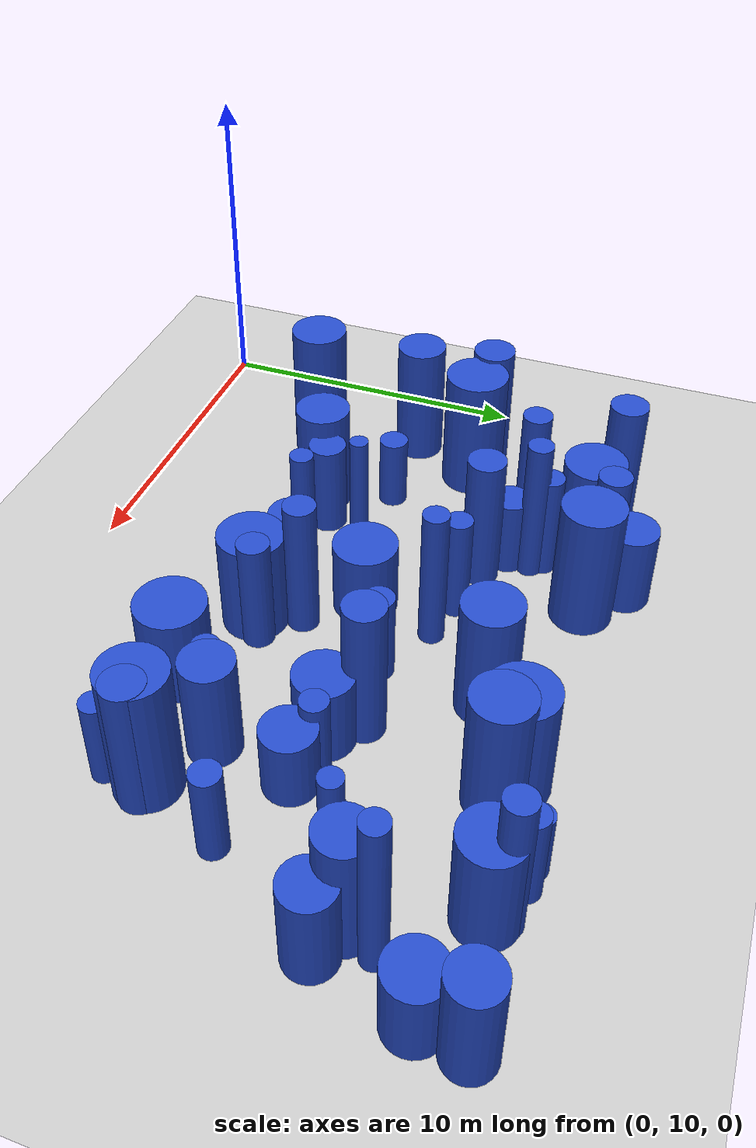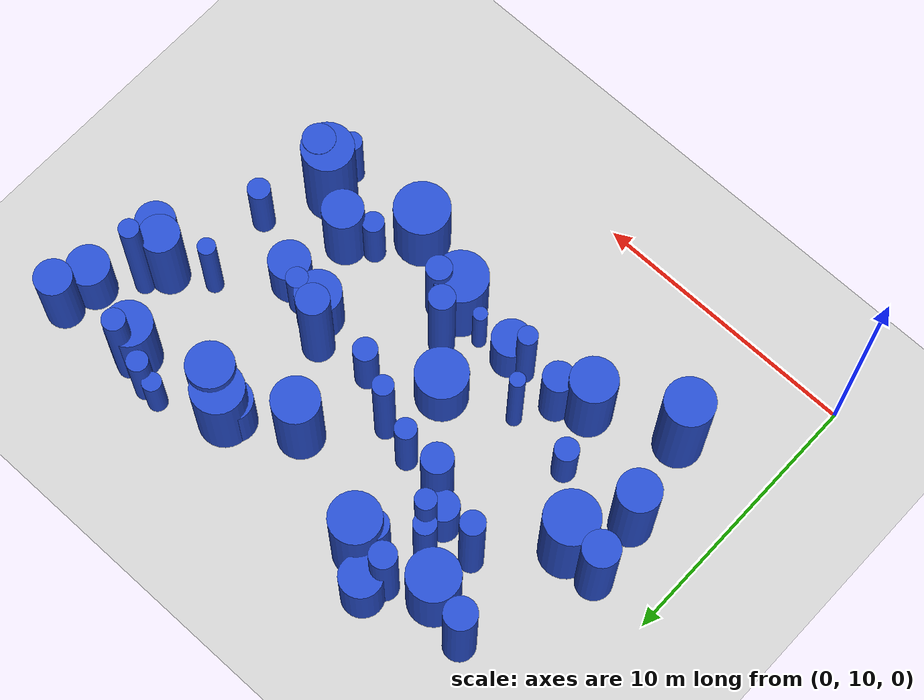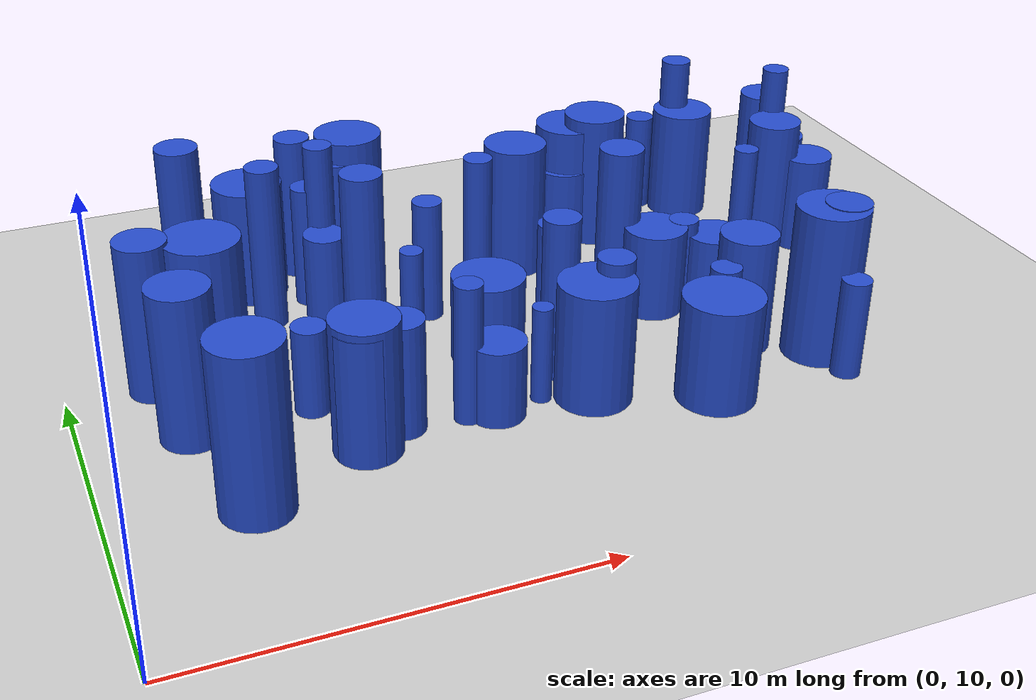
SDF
<sdf version="1.6">
 <world name="default">
  <model name="ground_plane">
   <static>1</static>
   <link name="link">
    <collision name="collision">
     <geometry><plane><normal>0 0 1</normal><size>100 100</size></plane></geometry>
     <surface><friction><ode><mu>100</mu><mu2>50</mu2></ode></friction></surface>
    </collision>
    <visual name="visual">
     <cast_shadows>0</cast_shadows>
     <geometry><plane><normal>0 0 1</normal><size>100 100</size></plane></geometry>
     <material>
      <script><uri>file://media/materials/scripts/gazebo.material</uri><name>Gazebo/Grey</name></script>
     </material>
    </visual>
   </link>
  </model>
  <model name="11">
   <static>0</static>
   <link name="link">
    <inertial>
     <mass>2</mass>
     <inertia><ixx>1.92531</ixx><ixy>0</ixy><ixz>0</ixz><iyy>1.92531</iyy><iyz>0</iyz><izz>0.103853</izz></inertia>
    </inertial>
    <collision name="collision">
     <geometry><cylinder><length>3.35266</length><radius>0.322263</radius></cylinder></geometry>
     <surface><contact><collide_without_contact>1</collide_without_contact></contact></surface>
    </collision>
    <visual name="visual">
     <geometry><cylinder><length>3.35266</length><radius>0.322263</radius></cylinder></geometry>
     <material>
      <script><uri>file://media/materials/scripts/gazebo.material</uri><name>Gazebo/Blue</name></script>
     </material>
    </visual>
    <gravity>0</gravity>
   </link>
   <pose>18.8928 20.868 1.67633 0 -0 0</pose>
  </model>
  <model name="18">
   <static>0</static>
   <link name="link">
    <inertial>
     <mass>2</mass>
     <inertia><ixx>2.75852</ixx><ixy>0</ixy><ixz>0</ixz><iyy>2.75852</iyy><iyz>0</iyz><izz>0.232447</izz></inertia>
    </inertial>
    <collision name="collision">
     <geometry><cylinder><length>3.98168</length><radius>0.482127</radius></cylinder></geometry>
     <surface><contact><collide_without_contact>1</collide_without_contact></contact></surface>
    </collision>
    <visual name="visual">
     <geometry><cylinder><length>3.98168</length><radius>0.482127</radius></cylinder></geometry>
     <material>
      <script><uri>file://media/materials/scripts/gazebo.material</uri><name>Gazebo/Blue</name></script>
     </material>
    </visual>
    <gravity>0</gravity>
   </link>
   <pose>7.12648 24.7804 1.99084 0 -0 0</pose>
  </model>
  <model name="19">
   <static>0</static>
   <link name="link">
    <inertial>
     <mass>2</mass>
     <inertia><ixx>2.15702</ixx><ixy>0</ixy><ixz>0</ixz><iyy>2.15702</iyy><iyz>0</iyz><izz>0.863134</izz></inertia>
    </inertial>
    <collision name="collision">
     <geometry><cylinder><length>3.21756</length><radius>0.92905</radius></cylinder></geometry>
     <surface><contact><collide_without_contact>1</collide_without_contact></contact></surface>
    </collision>
    <visual name="visual">
     <geometry><cylinder><length>3.21756</length><radius>0.92905</radius></cylinder></geometry>
     <material>
      <script><uri>file://media/materials/scripts/gazebo.material</uri><name>Gazebo/Blue</name></script>
     </material>
    </visual>
    <gravity>0</gravity>
   </link>
   <pose>5.64396 24.0193 1.60878 0 -0 0</pose>
  </model>
  <model name="27">
   <static>0</static>
   <link name="link">
    <inertial>
     <mass>2</mass>
     <inertia>
      <ixx>0.751136</ixx>
      <ixy>0</ixy>
      <ixz>0</ixz>
      <iyy>0.751136</iyy>
      <iyz>0</iyz>
      <izz>0.125842</izz>
     </inertia>
    </inertial>
    <collision name="collision">
     <geometry><cylinder><length>2.03207</length><radius>0.354742</radius></cylinder></geometry>
     <surface><contact><collide_without_contact>1</collide_without_contact></contact></surface>
    </collision>
    <visual name="visual">
     <geometry><cylinder><length>2.03207</length><radius>0.354742</radius></cylinder></geometry>
     <material>
      <script><uri>file://media/materials/scripts/gazebo.material</uri><name>Gazebo/Blue</name></script>
     </material>
    </visual>
    <gravity>0</gravity>
   </link>
   <pose>17.2823 25.2801 1.01603 0 -0 0</pose>
  </model>
  <model name="29">
   <static>0</static>
   <link name="link">
    <inertial>
     <mass>2</mass>
     <inertia><ixx>1.20712</ixx><ixy>0</ixy><ixz>0</ixz><iyy>1.20712</iyy><iyz>0</iyz><izz>0.139764</izz></inertia>
    </inertial>
    <collision name="collision">
     <geometry><cylinder><length>2.61217</length><radius>0.37385</radius></cylinder></geometry>
     <surface><contact><collide_without_contact>1</collide_without_contact></contact></surface>
    </collision>
    <visual name="visual">
     <geometry><cylinder><length>2.61217</length><radius>0.37385</radius></cylinder></geometry>
     <material>
      <script><uri>file://media/materials/scripts/gazebo.material</uri><name>Gazebo/Blue</name></script>
     </material>
    </visual>
    <gravity>0</gravity>
   </link>
   <pose>18.2533 14.5095 1.30608 0 -0 0</pose>
  </model>
  <model name="44">
   <static>0</static>
   <link name="link">
    <inertial>
     <mass>2</mass>
     <inertia>
      <ixx>0.976726</ixx>
      <ixy>0</ixy>
      <ixz>0</ixz>
      <iyy>0.976726</iyy>
      <iyz>0</iyz>
      <izz>0.189761</izz>
     </inertia>
    </inertial>
    <collision name="collision">
     <geometry><cylinder><length>2.30023</length><radius>0.435615</radius></cylinder></geometry>
     <surface><contact><collide_without_contact>1</collide_without_contact></contact></surface>
    </collision>
    <visual name="visual">
     <geometry><cylinder><length>2.30023</length><radius>0.435615</radius></cylinder></geometry>
     <material>
      <script><uri>file://media/materials/scripts/gazebo.material</uri><name>Gazebo/Blue</name></script>
     </material>
    </visual>
    <gravity>0</gravity>
   </link>
   <pose>5.48669 17.7345 1.15012 0 -0 0</pose>
  </model>
  <model name="63">
   <static>0</static>
   <link name="link">
    <inertial>
     <mass>2</mass>
     <inertia><ixx>3.37464</ixx><ixy>0</ixy><ixz>0</ixz><iyy>3.37464</iyy><iyz>0</iyz><izz>0.189522</izz></inertia>
    </inertial>
    <collision name="collision">
     <geometry><cylinder><length>4.43613</length><radius>0.435342</radius></cylinder></geometry>
     <surface><contact><collide_without_contact>1</collide_without_contact></contact></surface>
    </collision>
    <visual name="visual">
     <geometry><cylinder><length>4.43613</length><radius>0.435342</radius></cylinder></geometry>
     <material>
      <script><uri>file://media/materials/scripts/gazebo.material</uri><name>Gazebo/Blue</name></script>
     </material>
    </visual>
    <gravity>0</gravity>
   </link>
   <pose>5.65746 22.1794 2.21807 0 -0 0</pose>
  </model>
  <model name="65">
   <static>0</static>
   <link name="link">
    <inertial>
     <mass>2</mass>
     <inertia><ixx>0.9257</ixx><ixy>0</ixy><ixz>0</ixz><iyy>0.9257</iyy><iyz>0</iyz><izz>0.495184</izz></inertia>
    </inertial>
    <collision name="collision">
     <geometry><cylinder><length>2.01709</length><radius>0.703693</radius></cylinder></geometry>
     <surface><contact><collide_without_contact>1</collide_without_contact></contact></surface>
    </collision>
    <visual name="visual">
     <geometry><cylinder><length>2.01709</length><radius>0.703693</radius></cylinder></geometry>
     <material>
      <script><uri>file://media/materials/scripts/gazebo.material</uri><name>Gazebo/Blue</name></script>
     </material>
    </visual>
    <gravity>0</gravity>
   </link>
   <pose>9.50819 15.9698 1.00854 0 -0 0</pose>
  </model>
  <model name="70">
   <static>0</static>
   <link name="link">
    <inertial>
     <mass>2</mass>
     <inertia><ixx>2.38876</ixx><ixy>0</ixy><ixz>0</ixz><iyy>2.38876</iyy><iyz>0</iyz><izz>0.883901</izz></inertia>
    </inertial>
    <collision name="collision">
     <geometry><cylinder><length>3.41773</length><radius>0.94016</radius></cylinder></geometry>
     <surface><contact><collide_without_contact>1</collide_without_contact></contact></surface>
    </collision>
    <visual name="visual">
     <geometry><cylinder><length>3.41773</length><radius>0.94016</radius></cylinder></geometry>
     <material>
      <script><uri>file://media/materials/scripts/gazebo.material</uri><name>Gazebo/Blue</name></script>
     </material>
    </visual>
    <gravity>0</gravity>
   </link>
   <pose>15.0925 24.2243 1.70886 0 -0 0</pose>
  </model>
  <model name="80">
   <static>0</static>
   <link name="link">
    <inertial>
     <mass>2</mass>
     <inertia><ixx>3.19742</ixx><ixy>0</ixy><ixz>0</ixz><iyy>3.19742</iyy><iyz>0</iyz><izz>0.854459</izz></inertia>
    </inertial>
    <collision name="collision">
     <geometry><cylinder><length>4.0769</length><radius>0.924369</radius></cylinder></geometry>
     <surface><contact><collide_without_contact>1</collide_without_contact></contact></surface>
    </collision>
    <visual name="visual">
     <geometry><cylinder><length>4.0769</length><radius>0.924369</radius></cylinder></geometry>
     <material>
      <script><uri>file://media/materials/scripts/gazebo.material</uri><name>Gazebo/Blue</name></script>
     </material>
    </visual>
    <gravity>0</gravity>
   </link>
   <pose>18.194 15.6923 2.03845 0 -0 0</pose>
  </model>
  <model name="100">
   <static>0</static>
   <link name="link">
    <inertial>
     <mass>2</mass>
     <inertia><ixx>1.38166</ixx><ixy>0</ixy><ixz>0</ixz><iyy>1.38166</iyy><iyz>0</iyz><izz>0.57139</izz></inertia>
    </inertial>
    <collision name="collision">
     <geometry><cylinder><length>2.56433</length><radius>0.755903</radius></cylinder></geometry>
     <surface><contact><collide_without_contact>1</collide_without_contact></contact></surface>
    </collision>
    <visual name="visual">
     <geometry><cylinder><length>2.56433</length><radius>0.755903</radius></cylinder></geometry>
     <material>
      <script><uri>file://media/materials/scripts/gazebo.material</uri><name>Gazebo/Blue</name></script>
     </material>
    </visual>
    <gravity>0</gravity>
   </link>
   <pose>7.4595 25.5098 1.28216 0 -0 0</pose>
  </model>
  <model name="113">
   <static>0</static>
   <link name="link">
    <inertial>
     <mass>2</mass>
     <inertia><ixx>1.38505</ixx><ixy>0</ixy><ixz>0</ixz><iyy>1.38505</iyy><iyz>0</iyz><izz>0.151574</izz></inertia>
    </inertial>
    <collision name="collision">
     <geometry><cylinder><length>2.80278</length><radius>0.389325</radius></cylinder></geometry>
     <surface><contact><collide_without_contact>1</collide_without_contact></contact></surface>
    </collision>
    <visual name="visual">
     <geometry><cylinder><length>2.80278</length><radius>0.389325</radius></cylinder></geometry>
     <material>
      <script><uri>file://media/materials/scripts/gazebo.material</uri><name>Gazebo/Blue</name></script>
     </material>
    </visual>
    <gravity>0</gravity>
   </link>
   <pose>17.8881 25.224 1.40139 0 -0 0</pose>
  </model>
  <model name="125">
   <static>0</static>
   <link name="link">
    <inertial>
     <mass>2</mass>
     <inertia><ixx>2.3621</ixx><ixy>0</ixy><ixz>0</ixz><iyy>2.3621</iyy><iyz>0</iyz><izz>0.687938</izz></inertia>
    </inertial>
    <collision name="collision">
     <geometry><cylinder><length>3.47977</length><radius>0.829421</radius></cylinder></geometry>
     <surface><contact><collide_without_contact>1</collide_without_contact></contact></surface>
    </collision>
    <visual name="visual">
     <geometry><cylinder><length>3.47977</length><radius>0.829421</radius></cylinder></geometry>
     <material>
      <script><uri>file://media/materials/scripts/gazebo.material</uri><name>Gazebo/Blue</name></script>
     </material>
    </visual>
    <gravity>0</gravity>
   </link>
   <pose>6.20639 15.6713 1.73988 0 -0 0</pose>
  </model>
  <model name="126">
   <static>0</static>
   <link name="link">
    <inertial>
     <mass>2</mass>
     <inertia><ixx>3.43668</ixx><ixy>0</ixy><ixz>0</ixz><iyy>3.43668</iyy><iyz>0</iyz><izz>0.169152</izz></inertia>
    </inertial>
    <collision name="collision">
     <geometry><cylinder><length>4.48471</length><radius>0.411281</radius></cylinder></geometry>
     <surface><contact><collide_without_contact>1</collide_without_contact></contact></surface>
    </collision>
    <visual name="visual">
     <geometry><cylinder><length>4.48471</length><radius>0.411281</radius></cylinder></geometry>
     <material>
      <script><uri>file://media/materials/scripts/gazebo.material</uri><name>Gazebo/Blue</name></script>
     </material>
    </visual>
    <gravity>0</gravity>
   </link>
   <pose>18.8852 25.0351 2.24236 0 -0 0</pose>
  </model>
  <model name="139">
   <static>0</static>
   <link name="link">
    <inertial>
     <mass>2</mass>
     <inertia><ixx>1.75257</ixx><ixy>0</ixy><ixz>0</ixz><iyy>1.75257</iyy><iyz>0</iyz><izz>0.456247</izz></inertia>
    </inertial>
    <collision name="collision">
     <geometry><cylinder><length>3.02435</length><radius>0.675461</radius></cylinder></geometry>
     <surface><contact><collide_without_contact>1</collide_without_contact></contact></surface>
    </collision>
    <visual name="visual">
     <geometry><cylinder><length>3.02435</length><radius>0.675461</radius></cylinder></geometry>
     <material>
      <script><uri>file://media/materials/scripts/gazebo.material</uri><name>Gazebo/Blue</name></script>
     </material>
    </visual>
    <gravity>0</gravity>
   </link>
   <pose>22.0035 25.0688 1.51217 0 -0 0</pose>
  </model>
  <model name="144">
   <static>0</static>
   <link name="link">
    <inertial>
     <mass>2</mass>
     <inertia><ixx>2.25768</ixx><ixy>0</ixy><ixz>0</ixz><iyy>2.25768</iyy><iyz>0</iyz><izz>0.123162</izz></inertia>
    </inertial>
    <collision name="collision">
     <geometry><cylinder><length>3.62996</length><radius>0.350945</radius></cylinder></geometry>
     <surface><contact><collide_without_contact>1</collide_without_contact></contact></surface>
    </collision>
    <visual name="visual">
     <geometry><cylinder><length>3.62996</length><radius>0.350945</radius></cylinder></geometry>
     <material>
      <script><uri>file://media/materials/scripts/gazebo.material</uri><name>Gazebo/Blue</name></script>
     </material>
    </visual>
    <gravity>0</gravity>
   </link>
   <pose>8.7995 16.037 1.81498 0 -0 0</pose>
  </model>
  <model name="158">
   <static>0</static>
   <link name="link">
    <inertial>
     <mass>2</mass>
     <inertia><ixx>1.28929</ixx><ixy>0</ixy><ixz>0</ixz><iyy>1.28929</iyy><iyz>0</iyz><izz>0.694785</izz></inertia>
    </inertial>
    <collision name="collision">
     <geometry><cylinder><length>2.37727</length><radius>0.833537</radius></cylinder></geometry>
     <surface><contact><collide_without_contact>1</collide_without_contact></contact></surface>
    </collision>
    <visual name="visual">
     <geometry><cylinder><length>2.37727</length><radius>0.833537</radius></cylinder></geometry>
     <material>
      <script><uri>file://media/materials/scripts/gazebo.material</uri><name>Gazebo/Blue</name></script>
     </material>
    </visual>
    <gravity>0</gravity>
   </link>
   <pose>15.3296 19.2733 1.18863 0 -0 0</pose>
  </model>
  <model name="164">
   <static>0</static>
   <link name="link">
    <inertial>
     <mass>2</mass>
     <inertia><ixx>1.11747</ixx><ixy>0</ixy><ixz>0</ixz><iyy>1.11747</iyy><iyz>0</iyz><izz>0.607863</izz></inertia>
    </inertial>
    <collision name="collision">
     <geometry><cylinder><length>2.20935</length><radius>0.779656</radius></cylinder></geometry>
     <surface><contact><collide_without_contact>1</collide_without_contact></contact></surface>
    </collision>
    <visual name="visual">
     <geometry><cylinder><length>2.20935</length><radius>0.779656</radius></cylinder></geometry>
     <material>
      <script><uri>file://media/materials/scripts/gazebo.material</uri><name>Gazebo/Blue</name></script>
     </material>
    </visual>
    <gravity>0</gravity>
   </link>
   <pose>14.8555 23.9788 1.10467 0 -0 0</pose>
  </model>
  <model name="165">
   <static>0</static>
   <link name="link">
    <inertial>
     <mass>2</mass>
     <inertia><ixx>1.34519</ixx><ixy>0</ixy><ixz>0</ixz><iyy>1.34519</iyy><iyz>0</iyz><izz>0.16718</izz></inertia>
    </inertial>
    <collision name="collision">
     <geometry><cylinder><length>2.75129</length><radius>0.408876</radius></cylinder></geometry>
     <surface><contact><collide_without_contact>1</collide_without_contact></contact></surface>
    </collision>
    <visual name="visual">
     <geometry><cylinder><length>2.75129</length><radius>0.408876</radius></cylinder></geometry>
     <material>
      <script><uri>file://media/materials/scripts/gazebo.material</uri><name>Gazebo/Blue</name></script>
     </material>
    </visual>
    <gravity>0</gravity>
   </link>
   <pose>19.3045 17.9938 1.37564 0 -0 0</pose>
  </model>
  <model name="170">
   <static>0</static>
   <link name="link">
    <inertial>
     <mass>2</mass>
     <inertia><ixx>3.33499</ixx><ixy>0</ixy><ixz>0</ixz><iyy>3.33499</iyy><iyz>0</iyz><izz>0.13907</izz></inertia>
    </inertial>
    <collision name="collision">
     <geometry><cylinder><length>4.42637</length><radius>0.372922</radius></cylinder></geometry>
     <surface><contact><collide_without_contact>1</collide_without_contact></contact></surface>
    </collision>
    <visual name="visual">
     <geometry><cylinder><length>4.42637</length><radius>0.372922</radius></cylinder></geometry>
     <material>
      <script><uri>file://media/materials/scripts/gazebo.material</uri><name>Gazebo/Blue</name></script>
     </material>
    </visual>
    <gravity>0</gravity>
   </link>
   <pose>10.901 20.7328 2.21318 0 -0 0</pose>
  </model>
  <model name="172">
   <static>0</static>
   <link name="link">
    <inertial>
     <mass>2</mass>
     <inertia><ixx>3.58316</ixx><ixy>0</ixy><ixz>0</ixz><iyy>3.58316</iyy><iyz>0</iyz><izz>0.140377</izz></inertia>
    </inertial>
    <collision name="collision">
     <geometry><cylinder><length>4.59106</length><radius>0.37467</radius></cylinder></geometry>
     <surface><contact><collide_without_contact>1</collide_without_contact></contact></surface>
    </collision>
    <visual name="visual">
     <geometry><cylinder><length>4.59106</length><radius>0.37467</radius></cylinder></geometry>
     <material>
      <script><uri>file://media/materials/scripts/gazebo.material</uri><name>Gazebo/Blue</name></script>
     </material>
    </visual>
    <gravity>0</gravity>
   </link>
   <pose>7.24927 22.6448 2.29553 0 -0 0</pose>
  </model>
  <model name="173">
   <static>0</static>
   <link name="link">
    <inertial>
     <mass>2</mass>
     <inertia><ixx>1.9962</ixx><ixy>0</ixy><ixz>0</ixz><iyy>1.9962</iyy><iyz>0</iyz><izz>0.718032</izz></inertia>
    </inertial>
    <collision name="collision">
     <geometry><cylinder><length>3.13418</length><radius>0.847368</radius></cylinder></geometry>
     <surface><contact><collide_without_contact>1</collide_without_contact></contact></surface>
    </collision>
    <visual name="visual">
     <geometry><cylinder><length>3.13418</length><radius>0.847368</radius></cylinder></geometry>
     <material>
      <script><uri>file://media/materials/scripts/gazebo.material</uri><name>Gazebo/Blue</name></script>
     </material>
    </visual>
    <gravity>0</gravity>
   </link>
   <pose>18.9255 24.5537 1.56709 0 -0 0</pose>
  </model>
  <model name="176">
   <static>0</static>
   <link name="link">
    <inertial>
     <mass>2</mass>
     <inertia><ixx>2.99267</ixx><ixy>0</ixy><ixz>0</ixz><iyy>2.99267</iyy><iyz>0</iyz><izz>0.422823</izz></inertia>
    </inertial>
    <collision name="collision">
     <geometry><cylinder><length>4.08504</length><radius>0.650248</radius></cylinder></geometry>
     <surface><contact><collide_without_contact>1</collide_without_contact></contact></surface>
    </collision>
    <visual name="visual">
     <geometry><cylinder><length>4.08504</length><radius>0.650248</radius></cylinder></geometry>
     <material>
      <script><uri>file://media/materials/scripts/gazebo.material</uri><name>Gazebo/Blue</name></script>
     </material>
    </visual>
    <gravity>0</gravity>
   </link>
   <pose>2.16702 19.9621 2.04252 0 -0 0</pose>
  </model>
  <model name="180">
   <static>0</static>
   <link name="link">
    <inertial>
     <mass>2</mass>
     <inertia><ixx>3.17189</ixx><ixy>0</ixy><ixz>0</ixz><iyy>3.17189</iyy><iyz>0</iyz><izz>0.306945</izz></inertia>
    </inertial>
    <collision name="collision">
     <geometry><cylinder><length>4.25564</length><radius>0.554026</radius></cylinder></geometry>
     <surface><contact><collide_without_contact>1</collide_without_contact></contact></surface>
    </collision>
    <visual name="visual">
     <geometry><cylinder><length>4.25564</length><radius>0.554026</radius></cylinder></geometry>
     <material>
      <script><uri>file://media/materials/scripts/gazebo.material</uri><name>Gazebo/Blue</name></script>
     </material>
    </visual>
    <gravity>0</gravity>
   </link>
   <pose>7.97734 21.3154 2.12782 0 -0 0</pose>
  </model>
  <model name="195">
   <static>0</static>
   <link name="link">
    <inertial>
     <mass>2</mass>
     <inertia><ixx>1.13306</ixx><ixy>0</ixy><ixz>0</ixz><iyy>1.13306</iyy><iyz>0</iyz><izz>0.313996</izz></inertia>
    </inertial>
    <collision name="collision">
     <geometry><cylinder><length>2.41999</length><radius>0.560353</radius></cylinder></geometry>
     <surface><contact><collide_without_contact>1</collide_without_contact></contact></surface>
    </collision>
    <visual name="visual">
     <geometry><cylinder><length>2.41999</length><radius>0.560353</radius></cylinder></geometry>
     <material>
      <script><uri>file://media/materials/scripts/gazebo.material</uri><name>Gazebo/Blue</name></script>
     </material>
    </visual>
    <gravity>0</gravity>
   </link>
   <pose>7.13258 21.9326 1.20999 0 -0 0</pose>
  </model>
  <model name="204">
   <static>0</static>
   <link name="link">
    <inertial>
     <mass>2</mass>
     <inertia>
      <ixx>2.59021</ixx>
      <ixy>0</ixy>
      <ixz>0</ixz>
      <iyy>2.59021</iyy>
      <iyz>0</iyz>
      <izz>0.0764051</izz>
     </inertia>
    </inertial>
    <collision name="collision">
     <geometry><cylinder><length>3.91306</length><radius>0.276415</radius></cylinder></geometry>
     <surface><contact><collide_without_contact>1</collide_without_contact></contact></surface>
    </collision>
    <visual name="visual">
     <geometry><cylinder><length>3.91306</length><radius>0.276415</radius></cylinder></geometry>
     <material>
      <script><uri>file://media/materials/scripts/gazebo.material</uri><name>Gazebo/Blue</name></script>
     </material>
    </visual>
    <gravity>0</gravity>
   </link>
   <pose>7.95634 17.4906 1.95653 0 -0 0</pose>
  </model>
  <model name="213">
   <static>0</static>
   <link name="link">
    <inertial>
     <mass>2</mass>
     <inertia><ixx>1.3254</ixx><ixy>0</ixy><ixz>0</ixz><iyy>1.3254</iyy><iyz>0</iyz><izz>0.192068</izz></inertia>
    </inertial>
    <collision name="collision">
     <geometry><cylinder><length>2.71592</length><radius>0.438255</radius></cylinder></geometry>
     <surface><contact><collide_without_contact>1</collide_without_contact></contact></surface>
    </collision>
    <visual name="visual">
     <geometry><cylinder><length>2.71592</length><radius>0.438255</radius></cylinder></geometry>
     <material>
      <script><uri>file://media/materials/scripts/gazebo.material</uri><name>Gazebo/Blue</name></script>
     </material>
    </visual>
    <gravity>0</gravity>
   </link>
   <pose>12.6501 19.7806 1.35796 0 -0 0</pose>
  </model>
  <model name="218">
   <static>0</static>
   <link name="link">
    <inertial>
     <mass>2</mass>
     <inertia><ixx>1.0151</ixx><ixy>0</ixy><ixz>0</ixz><iyy>1.0151</iyy><iyz>0</iyz><izz>0.309749</izz></inertia>
    </inertial>
    <collision name="collision">
     <geometry><cylinder><length>2.27186</length><radius>0.556551</radius></cylinder></geometry>
     <surface><contact><collide_without_contact>1</collide_without_contact></contact></surface>
    </collision>
    <visual name="visual">
     <geometry><cylinder><length>2.27186</length><radius>0.556551</radius></cylinder></geometry>
     <material>
      <script><uri>file://media/materials/scripts/gazebo.material</uri><name>Gazebo/Blue</name></script>
     </material>
    </visual>
    <gravity>0</gravity>
   </link>
   <pose>14.6183 14.6039 1.13593 0 -0 0</pose>
  </model>
  <model name="225">
   <static>0</static>
   <link name="link">
    <inertial>
     <mass>2</mass>
     <inertia><ixx>1.21886</ixx><ixy>0</ixy><ixz>0</ixz><iyy>1.21886</iyy><iyz>0</iyz><izz>0.152991</izz></inertia>
    </inertial>
    <collision name="collision">
     <geometry><cylinder><length>2.61805</length><radius>0.391141</radius></cylinder></geometry>
     <surface><contact><collide_without_contact>1</collide_without_contact></contact></surface>
    </collision>
    <visual name="visual">
     <geometry><cylinder><length>2.61805</length><radius>0.391141</radius></cylinder></geometry>
     <material>
      <script><uri>file://media/materials/scripts/gazebo.material</uri><name>Gazebo/Blue</name></script>
     </material>
    </visual>
    <gravity>0</gravity>
   </link>
   <pose>15.6454 16.2121 1.30903 0 -0 0</pose>
  </model>
  <model name="235">
   <static>0</static>
   <link name="link">
    <inertial>
     <mass>2</mass>
     <inertia><ixx>2.70625</ixx><ixy>0</ixy><ixz>0</ixz><iyy>2.70625</iyy><iyz>0</iyz><izz>0.71273</izz></inertia>
    </inertial>
    <collision name="collision">
     <geometry><cylinder><length>3.7549</length><radius>0.844233</radius></cylinder></geometry>
     <surface><contact><collide_without_contact>1</collide_without_contact></contact></surface>
    </collision>
    <visual name="visual">
     <geometry><cylinder><length>3.7549</length><radius>0.844233</radius></cylinder></geometry>
     <material>
      <script><uri>file://media/materials/scripts/gazebo.material</uri><name>Gazebo/Blue</name></script>
     </material>
    </visual>
    <gravity>0</gravity>
   </link>
   <pose>15.7153 23.8791 1.87745 0 -0 0</pose>
  </model>
  <model name="236">
   <static>0</static>
   <link name="link">
    <inertial>
     <mass>2</mass>
     <inertia><ixx>1.61074</ixx><ixy>0</ixy><ixz>0</ixz><iyy>1.61074</iyy><iyz>0</iyz><izz>0.316828</izz></inertia>
    </inertial>
    <collision name="collision">
     <geometry><cylinder><length>2.95194</length><radius>0.562875</radius></cylinder></geometry>
     <surface><contact><collide_without_contact>1</collide_without_contact></contact></surface>
    </collision>
    <visual name="visual">
     <geometry><cylinder><length>2.95194</length><radius>0.562875</radius></cylinder></geometry>
     <material>
      <script><uri>file://media/materials/scripts/gazebo.material</uri><name>Gazebo/Blue</name></script>
     </material>
    </visual>
    <gravity>0</gravity>
   </link>
   <pose>7.23209 16.2098 1.47597 0 -0 0</pose>
  </model>
  <model name="254">
   <static>0</static>
   <link name="link">
    <inertial>
     <mass>2</mass>
     <inertia><ixx>3.35652</ixx><ixy>0</ixy><ixz>0</ixz><iyy>3.35652</iyy><iyz>0</iyz><izz>0.339251</izz></inertia>
    </inertial>
    <collision name="collision">
     <geometry><cylinder><length>4.3728</length><radius>0.582452</radius></cylinder></geometry>
     <surface><contact><collide_without_contact>1</collide_without_contact></contact></surface>
    </collision>
    <visual name="visual">
     <geometry><cylinder><length>4.3728</length><radius>0.582452</radius></cylinder></geometry>
     <material>
      <script><uri>file://media/materials/scripts/gazebo.material</uri><name>Gazebo/Blue</name></script>
     </material>
    </visual>
    <gravity>0</gravity>
   </link>
   <pose>14.6531 20.0994 2.1864 0 -0 0</pose>
  </model>
  <model name="268">
   <static>0</static>
   <link name="link">
    <inertial>
     <mass>2</mass>
     <inertia><ixx>2.12882</ixx><ixy>0</ixy><ixz>0</ixz><iyy>2.12882</iyy><iyz>0</iyz><izz>0.214561</izz></inertia>
    </inertial>
    <collision name="collision">
     <geometry><cylinder><length>3.4827</length><radius>0.463207</radius></cylinder></geometry>
     <surface><contact><collide_without_contact>1</collide_without_contact></contact></surface>
    </collision>
    <visual name="visual">
     <geometry><cylinder><length>3.4827</length><radius>0.463207</radius></cylinder></geometry>
     <material>
      <script><uri>file://media/materials/scripts/gazebo.material</uri><name>Gazebo/Blue</name></script>
     </material>
    </visual>
    <gravity>0</gravity>
   </link>
   <pose>12.6166 16.2035 1.74135 0 -0 0</pose>
  </model>
  <model name="277">
   <static>0</static>
   <link name="link">
    <inertial>
     <mass>2</mass>
     <inertia><ixx>2.11337</ixx><ixy>0</ixy><ixz>0</ixz><iyy>2.11337</iyy><iyz>0</iyz><izz>0.594715</izz></inertia>
    </inertial>
    <collision name="collision">
     <geometry><cylinder><length>3.30092</length><radius>0.771178</radius></cylinder></geometry>
     <surface><contact><collide_without_contact>1</collide_without_contact></contact></surface>
    </collision>
    <visual name="visual">
     <geometry><cylinder><length>3.30092</length><radius>0.771178</radius></cylinder></geometry>
     <material>
      <script><uri>file://media/materials/scripts/gazebo.material</uri><name>Gazebo/Blue</name></script>
     </material>
    </visual>
    <gravity>0</gravity>
   </link>
   <pose>6.15963 15.6056 1.65046 0 -0 0</pose>
  </model>
  <model name="278">
   <static>0</static>
   <link name="link">
    <inertial>
     <mass>2</mass>
     <inertia><ixx>1.77583</ixx><ixy>0</ixy><ixz>0</ixz><iyy>1.77583</iyy><iyz>0</iyz><izz>0.999063</izz></inertia>
    </inertial>
    <collision name="collision">
     <geometry><cylinder><length>2.76727</length><radius>0.999532</radius></cylinder></geometry>
     <surface><contact><collide_without_contact>1</collide_without_contact></contact></surface>
    </collision>
    <visual name="visual">
     <geometry><cylinder><length>2.76727</length><radius>0.999532</radius></cylinder></geometry>
     <material>
      <script><uri>file://media/materials/scripts/gazebo.material</uri><name>Gazebo/Blue</name></script>
     </material>
    </visual>
    <gravity>0</gravity>
   </link>
   <pose>14.7279 14.756 1.38363 0 -0 0</pose>
  </model>
  <model name="285">
   <static>0</static>
   <link name="link">
    <inertial>
     <mass>2</mass>
     <inertia><ixx>3.48611</ixx><ixy>0</ixy><ixz>0</ixz><iyy>3.48611</iyy><iyz>0</iyz><izz>0.76307</izz></inertia>
    </inertial>
    <collision name="collision">
     <geometry><cylinder><length>4.31595</length><radius>0.873539</radius></cylinder></geometry>
     <surface><contact><collide_without_contact>1</collide_without_contact></contact></surface>
    </collision>
    <visual name="visual">
     <geometry><cylinder><length>4.31595</length><radius>0.873539</radius></cylinder></geometry>
     <material>
      <script><uri>file://media/materials/scripts/gazebo.material</uri><name>Gazebo/Blue</name></script>
     </material>
    </visual>
    <gravity>0</gravity>
   </link>
   <pose>3.27606 14.4061 2.15798 0 -0 0</pose>
  </model>
  <model name="293">
   <static>0</static>
   <link name="link">
    <inertial>
     <mass>2</mass>
     <inertia><ixx>2.12298</ixx><ixy>0</ixy><ixz>0</ixz><iyy>2.12298</iyy><iyz>0</iyz><izz>0.923626</izz></inertia>
    </inertial>
    <collision name="collision">
     <geometry><cylinder><length>3.15706</length><radius>0.961055</radius></cylinder></geometry>
     <surface><contact><collide_without_contact>1</collide_without_contact></contact></surface>
    </collision>
    <visual name="visual">
     <geometry><cylinder><length>3.15706</length><radius>0.961055</radius></cylinder></geometry>
     <material>
      <script><uri>file://media/materials/scripts/gazebo.material</uri><name>Gazebo/Blue</name></script>
     </material>
    </visual>
    <gravity>0</gravity>
   </link>
   <pose>11.9566 15.827 1.57853 0 -0 0</pose>
  </model>
  <model name="295">
   <static>0</static>
   <link name="link">
    <inertial>
     <mass>2</mass>
     <inertia><ixx>3.15406</ixx><ixy>0</ixy><ixz>0</ixz><iyy>3.15406</iyy><iyz>0</iyz><izz>0.2168</izz></inertia>
    </inertial>
    <collision name="collision">
     <geometry><cylinder><length>4.2748</length><radius>0.465618</radius></cylinder></geometry>
     <surface><contact><collide_without_contact>1</collide_without_contact></contact></surface>
    </collision>
    <visual name="visual">
     <geometry><cylinder><length>4.2748</length><radius>0.465618</radius></cylinder></geometry>
     <material>
      <script><uri>file://media/materials/scripts/gazebo.material</uri><name>Gazebo/Blue</name></script>
     </material>
    </visual>
    <gravity>0</gravity>
   </link>
   <pose>11.6187 17.1482 2.1374 0 -0 0</pose>
  </model>
  <model name="297">
   <static>0</static>
   <link name="link">
    <inertial>
     <mass>2</mass>
     <inertia><ixx>1.02358</ixx><ixy>0</ixy><ixz>0</ixz><iyy>1.02358</iyy><iyz>0</iyz><izz>0.155278</izz></inertia>
    </inertial>
    <collision name="collision">
     <geometry><cylinder><length>2.38236</length><radius>0.394053</radius></cylinder></geometry>
     <surface><contact><collide_without_contact>1</collide_without_contact></contact></surface>
    </collision>
    <visual name="visual">
     <geometry><cylinder><length>2.38236</length><radius>0.394053</radius></cylinder></geometry>
     <material>
      <script><uri>file://media/materials/scripts/gazebo.material</uri><name>Gazebo/Blue</name></script>
     </material>
    </visual>
    <gravity>0</gravity>
   </link>
   <pose>16.212 19.3735 1.19118 0 -0 0</pose>
  </model>
  <model name="316">
   <static>0</static>
   <link name="link">
    <inertial>
     <mass>2</mass>
     <inertia><ixx>2.49443</ixx><ixy>0</ixy><ixz>0</ixz><iyy>2.49443</iyy><iyz>0</iyz><izz>0.505544</izz></inertia>
    </inertial>
    <collision name="collision">
     <geometry><cylinder><length>3.66742</length><radius>0.711016</radius></cylinder></geometry>
     <surface><contact><collide_without_contact>1</collide_without_contact></contact></surface>
    </collision>
    <visual name="visual">
     <geometry><cylinder><length>3.66742</length><radius>0.711016</radius></cylinder></geometry>
     <material>
      <script><uri>file://media/materials/scripts/gazebo.material</uri><name>Gazebo/Blue</name></script>
     </material>
    </visual>
    <gravity>0</gravity>
   </link>
   <pose>20.2617 21.681 1.83371 0 -0 0</pose>
  </model>
  <model name="320">
   <static>0</static>
   <link name="link">
    <inertial>
     <mass>2</mass>
     <inertia><ixx>2.09973</ixx><ixy>0</ixy><ixz>0</ixz><iyy>2.09973</iyy><iyz>0</iyz><izz>0.290186</izz></inertia>
    </inertial>
    <collision name="collision">
     <geometry><cylinder><length>3.42459</length><radius>0.538689</radius></cylinder></geometry>
     <surface><contact><collide_without_contact>1</collide_without_contact></contact></surface>
    </collision>
    <visual name="visual">
     <geometry><cylinder><length>3.42459</length><radius>0.538689</radius></cylinder></geometry>
     <material>
      <script><uri>file://media/materials/scripts/gazebo.material</uri><name>Gazebo/Blue</name></script>
     </material>
    </visual>
    <gravity>0</gravity>
   </link>
   <pose>8.15297 24.1415 1.71229 0 -0 0</pose>
  </model>
  <model name="336">
   <static>0</static>
   <link name="link">
    <inertial>
     <mass>2</mass>
     <inertia><ixx>3.98958</ixx><ixy>0</ixy><ixz>0</ixz><iyy>3.98958</iyy><iyz>0</iyz><izz>0.127267</izz></inertia>
    </inertial>
    <collision name="collision">
     <geometry><cylinder><length>4.85342</length><radius>0.356745</radius></cylinder></geometry>
     <surface><contact><collide_without_contact>1</collide_without_contact></contact></surface>
    </collision>
    <visual name="visual">
     <geometry><cylinder><length>4.85342</length><radius>0.356745</radius></cylinder></geometry>
     <material>
      <script><uri>file://media/materials/scripts/gazebo.material</uri><name>Gazebo/Blue</name></script>
     </material>
    </visual>
    <gravity>0</gravity>
   </link>
   <pose>20.6633 22.5112 2.42671 0 -0 0</pose>
  </model>
  <model name="340">
   <static>0</static>
   <link name="link">
    <inertial>
     <mass>2</mass>
     <inertia><ixx>1.9278</ixx><ixy>0</ixy><ixz>0</ixz><iyy>1.9278</iyy><iyz>0</iyz><izz>0.54804</izz></inertia>
    </inertial>
    <collision name="collision">
     <geometry><cylinder><length>3.15003</length><radius>0.740297</radius></cylinder></geometry>
     <surface><contact><collide_without_contact>1</collide_without_contact></contact></surface>
    </collision>
    <visual name="visual">
     <geometry><cylinder><length>3.15003</length><radius>0.740297</radius></cylinder></geometry>
     <material>
      <script><uri>file://media/materials/scripts/gazebo.material</uri><name>Gazebo/Blue</name></script>
     </material>
    </visual>
    <gravity>0</gravity>
   </link>
   <pose>16.559 16.7264 1.57501 0 -0 0</pose>
  </model>
  <model name="372">
   <static>0</static>
   <link name="link">
    <inertial>
     <mass>2</mass>
     <inertia><ixx>1.3087</ixx><ixy>0</ixy><ixz>0</ixz><iyy>1.3087</iyy><iyz>0</iyz><izz>0.879689</izz></inertia>
    </inertial>
    <collision name="collision">
     <geometry><cylinder><length>2.28323</length><radius>0.937917</radius></cylinder></geometry>
     <surface><contact><collide_without_contact>1</collide_without_contact></contact></surface>
    </collision>
    <visual name="visual">
     <geometry><cylinder><length>2.28323</length><radius>0.937917</radius></cylinder></geometry>
     <material>
      <script><uri>file://media/materials/scripts/gazebo.material</uri><name>Gazebo/Blue</name></script>
     </material>
    </visual>
    <gravity>0</gravity>
   </link>
   <pose>10.3196 18.5515 1.14161 0 -0 0</pose>
  </model>
  <model name="373">
   <static>0</static>
   <link name="link">
    <inertial>
     <mass>2</mass>
     <inertia><ixx>1.8992</ixx><ixy>0</ixy><ixz>0</ixz><iyy>1.8992</iyy><iyz>0</iyz><izz>0.151469</izz></inertia>
    </inertial>
    <collision name="collision">
     <geometry><cylinder><length>3.30769</length><radius>0.38919</radius></cylinder></geometry>
     <surface><contact><collide_without_contact>1</collide_without_contact></contact></surface>
    </collision>
    <visual name="visual">
     <geometry><cylinder><length>3.30769</length><radius>0.38919</radius></cylinder></geometry>
     <material>
      <script><uri>file://media/materials/scripts/gazebo.material</uri><name>Gazebo/Blue</name></script>
     </material>
    </visual>
    <gravity>0</gravity>
   </link>
   <pose>9.62969 21.045 1.65384 0 -0 0</pose>
  </model>
  <model name="382">
   <static>0</static>
   <link name="link">
    <inertial>
     <mass>2</mass>
     <inertia>
      <ixx>0.974287</ixx>
      <ixy>0</ixy>
      <ixz>0</ixz>
      <iyy>0.974287</iyy>
      <iyz>0</iyz>
      <izz>0.572796</izz>
     </inertia>
    </inertial>
    <collision name="collision">
     <geometry><cylinder><length>2.03158</length><radius>0.756833</radius></cylinder></geometry>
     <surface><contact><collide_without_contact>1</collide_without_contact></contact></surface>
    </collision>
    <visual name="visual">
     <geometry><cylinder><length>2.03158</length><radius>0.756833</radius></cylinder></geometry>
     <material>
      <script><uri>file://media/materials/scripts/gazebo.material</uri><name>Gazebo/Blue</name></script>
     </material>
    </visual>
    <gravity>0</gravity>
   </link>
   <pose>16.9582 18.9977 1.01579 0 -0 0</pose>
  </model>
  <model name="385">
   <static>0</static>
   <link name="link">
    <inertial>
     <mass>2</mass>
     <inertia><ixx>2.62771</ixx><ixy>0</ixy><ixz>0</ixz><iyy>2.62771</iyy><iyz>0</iyz><izz>0.714855</izz></inertia>
    </inertial>
    <collision name="collision">
     <geometry><cylinder><length>3.69076</length><radius>0.845491</radius></cylinder></geometry>
     <surface><contact><collide_without_contact>1</collide_without_contact></contact></surface>
    </collision>
    <visual name="visual">
     <geometry><cylinder><length>3.69076</length><radius>0.845491</radius></cylinder></geometry>
     <material>
      <script><uri>file://media/materials/scripts/gazebo.material</uri><name>Gazebo/Blue</name></script>
     </material>
    </visual>
    <gravity>0</gravity>
   </link>
   <pose>12.8375 22.848 1.84538 0 -0 0</pose>
  </model>
  <model name="418">
   <static>0</static>
   <link name="link">
    <inertial>
     <mass>2</mass>
     <inertia><ixx>3.11029</ixx><ixy>0</ixy><ixz>0</ixz><iyy>3.11029</iyy><iyz>0</iyz><izz>0.924591</izz></inertia>
    </inertial>
    <collision name="collision">
     <geometry><cylinder><length>3.98597</length><radius>0.961557</radius></cylinder></geometry>
     <surface><contact><collide_without_contact>1</collide_without_contact></contact></surface>
    </collision>
    <visual name="visual">
     <geometry><cylinder><length>3.98597</length><radius>0.961557</radius></cylinder></geometry>
     <material>
      <script><uri>file://media/materials/scripts/gazebo.material</uri><name>Gazebo/Blue</name></script>
     </material>
    </visual>
    <gravity>0</gravity>
   </link>
   <pose>3.5503 19.7969 1.99299 0 -0 0</pose>
  </model>
  <model name="419">
   <static>0</static>
   <link name="link">
    <inertial>
     <mass>2</mass>
     <inertia><ixx>3.06774</ixx><ixy>0</ixy><ixz>0</ixz><iyy>3.06774</iyy><iyz>0</iyz><izz>0.826851</izz></inertia>
    </inertial>
    <collision name="collision">
     <geometry><cylinder><length>3.99073</length><radius>0.909313</radius></cylinder></geometry>
     <surface><contact><collide_without_contact>1</collide_without_contact></contact></surface>
    </collision>
    <visual name="visual">
     <geometry><cylinder><length>3.99073</length><radius>0.909313</radius></cylinder></geometry>
     <material>
      <script><uri>file://media/materials/scripts/gazebo.material</uri><name>Gazebo/Blue</name></script>
     </material>
    </visual>
    <gravity>0</gravity>
   </link>
   <pose>8.61062 24.4906 1.99536 0 -0 0</pose>
  </model>
  <model name="426">
   <static>0</static>
   <link name="link">
    <inertial>
     <mass>2</mass>
     <inertia><ixx>1.93554</ixx><ixy>0</ixy><ixz>0</ixz><iyy>1.93554</iyy><iyz>0</iyz><izz>0.165874</izz></inertia>
    </inertial>
    <collision name="collision">
     <geometry><cylinder><length>3.33401</length><radius>0.407277</radius></cylinder></geometry>
     <surface><contact><collide_without_contact>1</collide_without_contact></contact></surface>
    </collision>
    <visual name="visual">
     <geometry><cylinder><length>3.33401</length><radius>0.407277</radius></cylinder></geometry>
     <material>
      <script><uri>file://media/materials/scripts/gazebo.material</uri><name>Gazebo/Blue</name></script>
     </material>
    </visual>
    <gravity>0</gravity>
   </link>
   <pose>6.97927 22.9828 1.667 0 -0 0</pose>
  </model>
  <model name="450">
   <static>0</static>
   <link name="link">
    <inertial>
     <mass>2</mass>
     <inertia>
      <ixx>1.10662</ixx>
      <ixy>0</ixy>
      <ixz>0</ixz>
      <iyy>1.10662</iyy>
      <iyz>0</iyz>
      <izz>0.0668259</izz>
     </inertia>
    </inertial>
    <collision name="collision">
     <geometry><cylinder><length>2.53757</length><radius>0.258507</radius></cylinder></geometry>
     <surface><contact><collide_without_contact>1</collide_without_contact></contact></surface>
    </collision>
    <visual name="visual">
     <geometry><cylinder><length>2.53757</length><radius>0.258507</radius></cylinder></geometry>
     <material>
      <script><uri>file://media/materials/scripts/gazebo.material</uri><name>Gazebo/Blue</name></script>
     </material>
    </visual>
    <gravity>0</gravity>
   </link>
   <pose>10.7433 16.1922 1.26878 0 -0 0</pose>
  </model>
  <model name="453">
   <static>0</static>
   <link name="link">
    <inertial>
     <mass>2</mass>
     <inertia><ixx>2.97112</ixx><ixy>0</ixy><ixz>0</ixz><iyy>2.97112</iyy><iyz>0</iyz><izz>0.339256</izz></inertia>
    </inertial>
    <collision name="collision">
     <geometry><cylinder><length>4.09987</length><radius>0.582457</radius></cylinder></geometry>
     <surface><contact><collide_without_contact>1</collide_without_contact></contact></surface>
    </collision>
    <visual name="visual">
     <geometry><cylinder><length>4.09987</length><radius>0.582457</radius></cylinder></geometry>
     <material>
      <script><uri>file://media/materials/scripts/gazebo.material</uri><name>Gazebo/Blue</name></script>
     </material>
    </visual>
    <gravity>0</gravity>
   </link>
   <pose>18.6 15.6781 2.04994 0 -0 0</pose>
  </model>
  <model name="457">
   <static>0</static>
   <link name="link">
    <inertial>
     <mass>2</mass>
     <inertia><ixx>1.47437</ixx><ixy>0</ixy><ixz>0</ixz><iyy>1.47437</iyy><iyz>0</iyz><izz>0.505809</izz></inertia>
    </inertial>
    <collision name="collision">
     <geometry><cylinder><length>2.70718</length><radius>0.711202</radius></cylinder></geometry>
     <surface><contact><collide_without_contact>1</collide_without_contact></contact></surface>
    </collision>
    <visual name="visual">
     <geometry><cylinder><length>2.70718</length><radius>0.711202</radius></cylinder></geometry>
     <material>
      <script><uri>file://media/materials/scripts/gazebo.material</uri><name>Gazebo/Blue</name></script>
     </material>
    </visual>
    <gravity>0</gravity>
   </link>
   <pose>21.0861 21.196 1.35359 0 -0 0</pose>
  </model>
  <model name="462">
   <static>0</static>
   <link name="link">
    <inertial>
     <mass>2</mass>
     <inertia><ixx>1.08565</ixx><ixy>0</ixy><ixz>0</ixz><iyy>1.08565</iyy><iyz>0</iyz><izz>0.590462</izz></inertia>
    </inertial>
    <collision name="collision">
     <geometry><cylinder><length>2.17773</length><radius>0.768415</radius></cylinder></geometry>
     <surface><contact><collide_without_contact>1</collide_without_contact></contact></surface>
    </collision>
    <visual name="visual">
     <geometry><cylinder><length>2.17773</length><radius>0.768415</radius></cylinder></geometry>
     <material>
      <script><uri>file://media/materials/scripts/gazebo.material</uri><name>Gazebo/Blue</name></script>
     </material>
    </visual>
    <gravity>0</gravity>
   </link>
   <pose>21.7894 23.799 1.08887 0 -0 0</pose>
  </model>
  <model name="484">
   <static>0</static>
   <link name="link">
    <inertial>
     <mass>2</mass>
     <inertia><ixx>2.93855</ixx><ixy>0</ixy><ixz>0</ixz><iyy>2.93855</iyy><iyz>0</iyz><izz>0.581228</izz></inertia>
    </inertial>
    <collision name="collision">
     <geometry><cylinder><length>3.98593</length><radius>0.762383</radius></cylinder></geometry>
     <surface><contact><collide_without_contact>1</collide_without_contact></contact></surface>
    </collision>
    <visual name="visual">
     <geometry><cylinder><length>3.98593</length><radius>0.762383</radius></cylinder></geometry>
     <material>
      <script><uri>file://media/materials/scripts/gazebo.material</uri><name>Gazebo/Blue</name></script>
     </material>
    </visual>
    <gravity>0</gravity>
   </link>
   <pose>2.55967 17.6677 1.99296 0 -0 0</pose>
  </model>
  <model name="495">
   <static>0</static>
   <link name="link">
    <inertial>
     <mass>2</mass>
     <inertia><ixx>3.19869</ixx><ixy>0</ixy><ixz>0</ixz><iyy>3.19869</iyy><iyz>0</iyz><izz>0.330708</izz></inertia>
    </inertial>
    <collision name="collision">
     <geometry><cylinder><length>4.26615</length><radius>0.575072</radius></cylinder></geometry>
     <surface><contact><collide_without_contact>1</collide_without_contact></contact></surface>
    </collision>
    <visual name="visual">
     <geometry><cylinder><length>4.26615</length><radius>0.575072</radius></cylinder></geometry>
     <material>
      <script><uri>file://media/materials/scripts/gazebo.material</uri><name>Gazebo/Blue</name></script>
     </material>
    </visual>
    <gravity>0</gravity>
   </link>
   <pose>3.9939 24.5662 2.13307 0 -0 0</pose>
  </model>
 </world>
</sdf>
